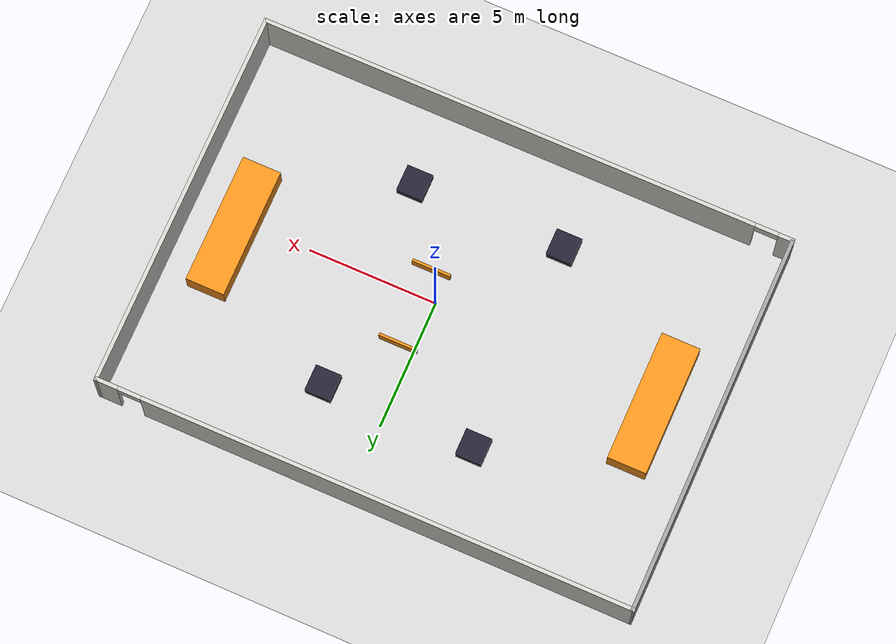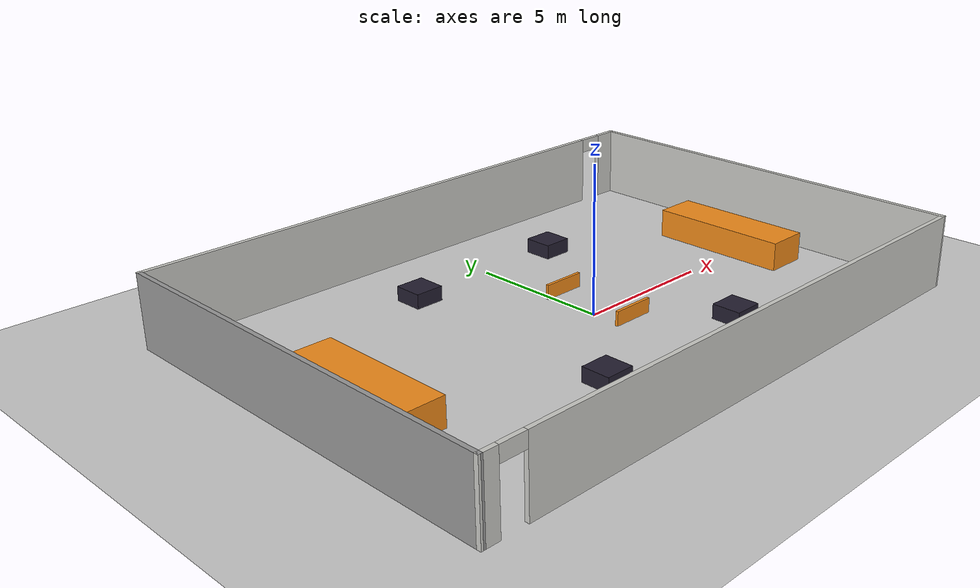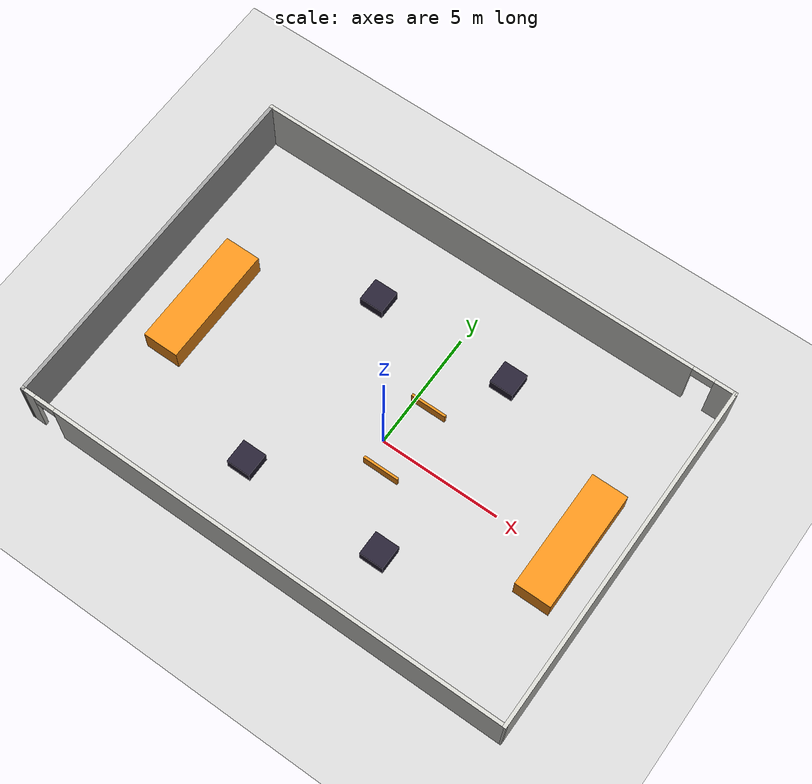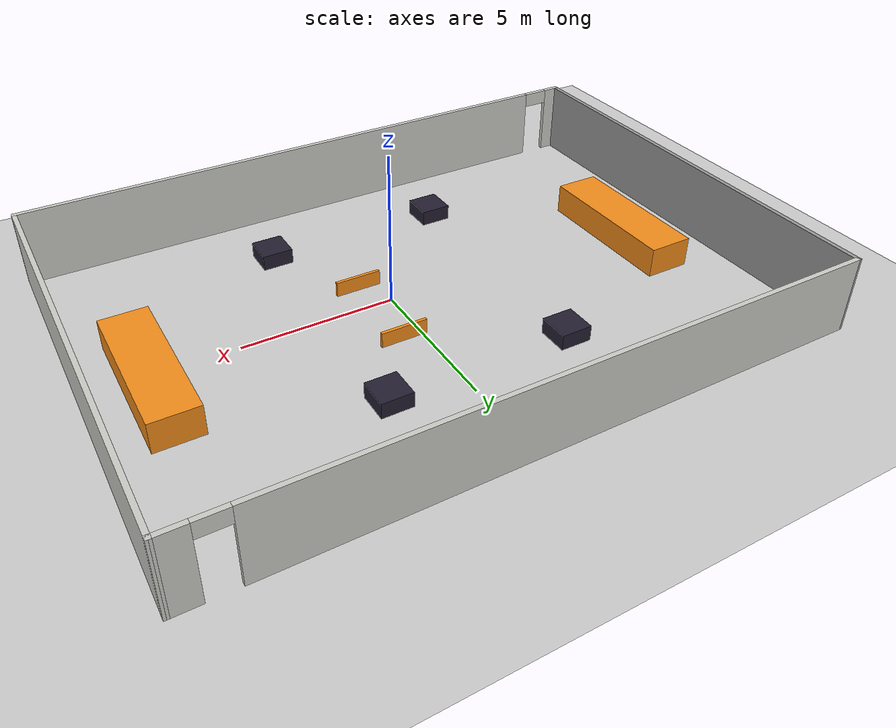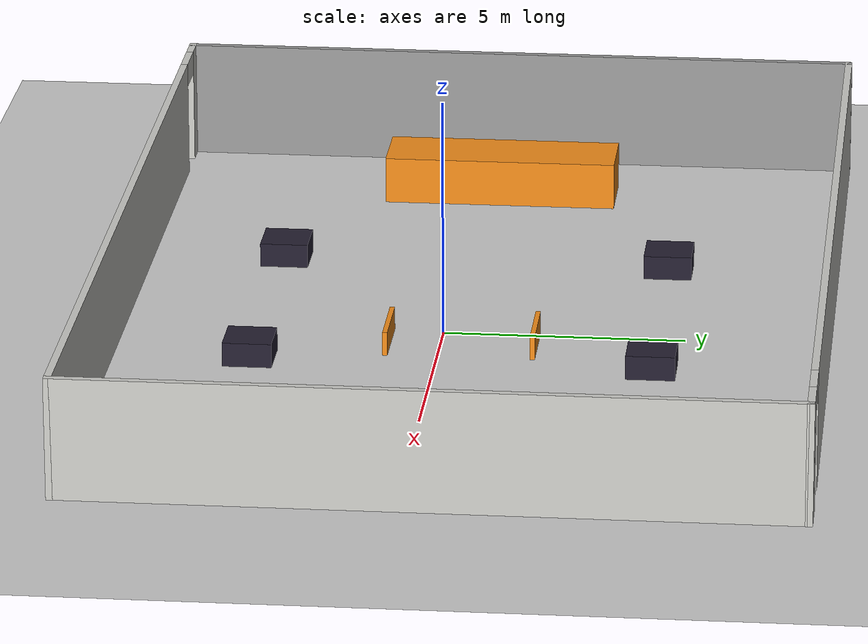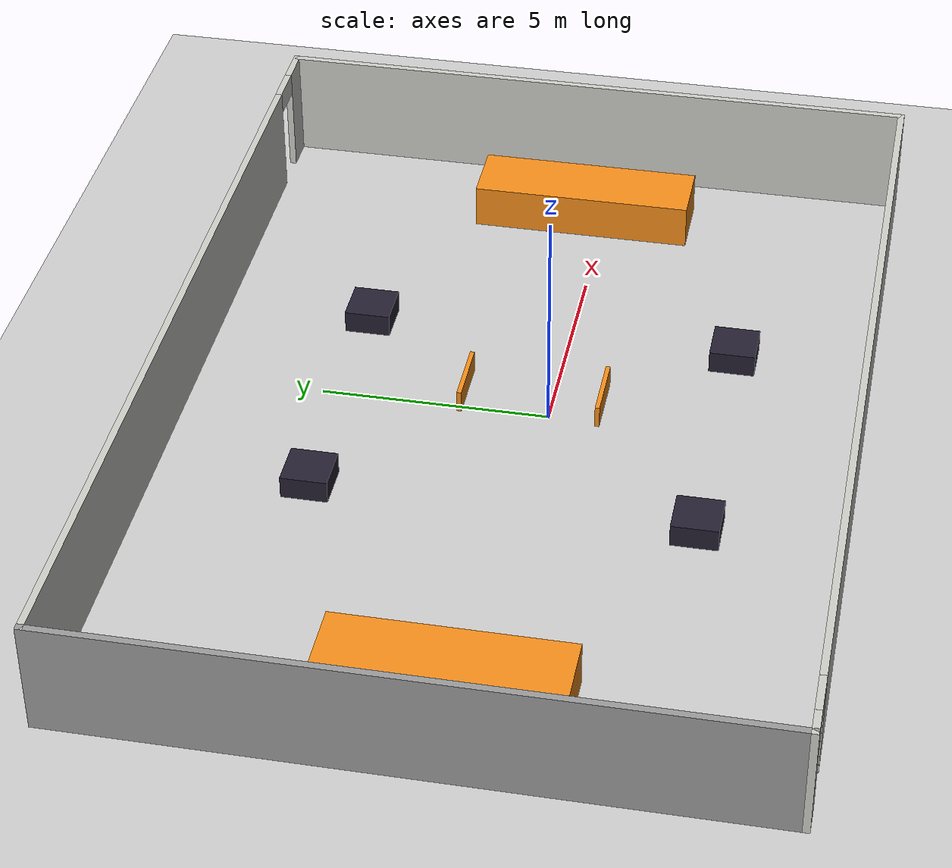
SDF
<sdf version="1.7">
 <world name="default">
  <light name="sun" type="directional">
   <pose>0 0 10 0 -0 0</pose>
   <diffuse>0.8 0.8 0.8 1</diffuse>
   <specular>0.2 0.2 0.2 1</specular>
   <attenuation>
    <range>1000</range>
    <constant>0.9</constant>
    <linear>0.01</linear>
    <quadratic>0.001</quadratic>
   </attenuation>
   <direction>-0.5 0.1 -0.9</direction>
   <spot><inner_angle>0</inner_angle><outer_angle>0</outer_angle><falloff>0</falloff></spot>
  </light>
  <model name="ground_plane">
   <static>1</static>
   <link name="link">
    <collision name="collision">
     <geometry><plane><normal>0 0 1</normal><size>100 100</size></plane></geometry>
     <surface>
      <contact><collide_bitmask>65535</collide_bitmask></contact>
      <friction><ode><mu>100</mu><mu2>50</mu2></ode></friction>
     </surface>
    </collision>
    <visual name="visual">
     <cast_shadows>0</cast_shadows>
     <geometry><plane><normal>0 0 1</normal><size>100 100</size></plane></geometry>
     <material>
      <script><uri>file://media/materials/scripts/gazebo.material</uri><name>Gazebo/Grey</name></script>
     </material>
    </visual>
   </link>
  </model>
  <gravity>0 0 -9.8</gravity>
  <magnetic_field>6e-06 2.3e-05 -4.2e-05</magnetic_field>
  <atmosphere type="adiabatic"/>
  <physics type="ode">
   <max_step_size>0.001</max_step_size>
   <real_time_factor>1</real_time_factor>
   <real_time_update_rate>1000</real_time_update_rate>
  </physics>
  <scene><ambient>0.4 0.4 0.4 1</ambient><background>0.7 0.7 0.7 1</background><shadows>1</shadows></scene>
  <audio><device>default</device></audio>
  <spherical_coordinates>
   <surface_model>EARTH_WGS84</surface_model>
   <latitude_deg>0</latitude_deg>
   <longitude_deg>0</longitude_deg>
   <elevation>0</elevation>
   <heading_deg>0</heading_deg>
  </spherical_coordinates>
  <model name="unit_box">
   <link name="link">
    <inertial>
     <mass>1</mass>
     <inertia>
      <ixx>0.166667</ixx>
      <ixy>0</ixy>
      <ixz>0</ixz>
      <iyy>0.166667</iyy>
      <iyz>0</iyz>
      <izz>0.166667</izz>
     </inertia>
    </inertial>
    <visual name="visual">
     <geometry><box><size>1.5 5 1</size></box></geometry>
     <material>
      <script><name>Gazebo/Orange</name><uri>file://media/materials/scripts/gazebo.material</uri></script>
      <shader type="pixel"><normal_map>__default__</normal_map></shader>
      <ambient>1 0.471 0 1</ambient>
      <diffuse>0.7 0.7 0.7 1</diffuse>
      <specular>0.01 0.01 0.01 1</specular>
      <emissive>0 0 0 1</emissive>
     </material>
    </visual>
    <collision name="collision">
     <geometry><box><size>1 1 1</size></box></geometry>
     <surface>
      <friction>
       <ode><mu>1</mu><mu2>1</mu2><fdir1>0 0 0</fdir1><slip1>0</slip1><slip2>0</slip2></ode>
       <torsional>
        <coefficient>1</coefficient>
        <patch_radius>0</patch_radius>
        <surface_radius>0</surface_radius>
        <use_patch_radius>1</use_patch_radius>
        <ode><slip>0</slip></ode>
       </torsional>
      </friction>
      <bounce><restitution_coefficient>0</restitution_coefficient><threshold>1e+06</threshold></bounce>
      <contact>
       <collide_without_contact>0</collide_without_contact>
       <collide_without_contact_bitmask>1</collide_without_contact_bitmask>
       <collide_bitmask>1</collide_bitmask>
       <ode>
        <soft_cfm>0</soft_cfm>
        <soft_erp>0.2</soft_erp>
        <kp>1e+13</kp>
        <kd>1</kd>
        <max_vel>0.01</max_vel>
        <min_depth>0</min_depth>
       </ode>
       <bullet>
        <split_impulse>1</split_impulse>
        <split_impulse_penetration_threshold>-0.01</split_impulse_penetration_threshold>
        <soft_cfm>0</soft_cfm>
        <soft_erp>0.2</soft_erp>
        <kp>1e+13</kp>
        <kd>1</kd>
       </bullet>
      </contact>
     </surface>
    </collision>
   </link>
   <static>0</static>
   <pose>-8.72262 0.456638 0.499995 0 1e-05 0</pose>
  </model>
  <model name="unit_box_clone">
   <link name="link">
    <inertial>
     <mass>1</mass>
     <inertia>
      <ixx>0.166667</ixx>
      <ixy>0</ixy>
      <ixz>0</ixz>
      <iyy>0.166667</iyy>
      <iyz>0</iyz>
      <izz>0.166667</izz>
     </inertia>
    </inertial>
    <visual name="visual">
     <geometry><box><size>1.5 5 1</size></box></geometry>
     <material>
      <script><name>Gazebo/Orange</name><uri>file://media/materials/scripts/gazebo.material</uri></script>
      <shader type="pixel"><normal_map>__default__</normal_map></shader>
      <ambient>1 0.471 0 1</ambient>
      <diffuse>0.7 0.7 0.7 1</diffuse>
      <specular>0.01 0.01 0.01 1</specular>
      <emissive>0 0 0 1</emissive>
     </material>
    </visual>
    <collision name="collision">
     <geometry><box><size>1 1 1</size></box></geometry>
     <surface>
      <friction>
       <ode><mu>1</mu><mu2>1</mu2><fdir1>0 0 0</fdir1><slip1>0</slip1><slip2>0</slip2></ode>
       <torsional>
        <coefficient>1</coefficient>
        <patch_radius>0</patch_radius>
        <surface_radius>0</surface_radius>
        <use_patch_radius>1</use_patch_radius>
        <ode><slip>0</slip></ode>
       </torsional>
      </friction>
      <bounce><restitution_coefficient>0</restitution_coefficient><threshold>1e+06</threshold></bounce>
      <contact>
       <collide_without_contact>0</collide_without_contact>
       <collide_without_contact_bitmask>1</collide_without_contact_bitmask>
       <collide_bitmask>1</collide_bitmask>
       <ode>
        <soft_cfm>0</soft_cfm>
        <soft_erp>0.2</soft_erp>
        <kp>1e+13</kp>
        <kd>1</kd>
        <max_vel>0.01</max_vel>
        <min_depth>0</min_depth>
       </ode>
       <bullet>
        <split_impulse>1</split_impulse>
        <split_impulse_penetration_threshold>-0.01</split_impulse_penetration_threshold>
        <soft_cfm>0</soft_cfm>
        <soft_erp>0.2</soft_erp>
        <kp>1e+13</kp>
        <kd>1</kd>
       </bullet>
      </contact>
     </surface>
    </collision>
   </link>
   <static>0</static>
   <pose>7.77297 0.493928 0.499995 -1e-05 0 0</pose>
  </model>
  <model name="machine_small">
   <link name="link">
    <inertial>
     <mass>1</mass>
     <inertia>
      <ixx>0.166667</ixx>
      <ixy>0</ixy>
      <ixz>0</ixz>
      <iyy>0.166667</iyy>
      <iyz>0</iyz>
      <izz>0.166667</izz>
     </inertia>
    </inertial>
    <visual name="visual">
     <geometry><box><size>1 1 0.5</size></box></geometry>
     <material>
      <script><name>Gazebo/Grey</name><uri>file://media/materials/scripts/gazebo.material</uri></script>
      <shader type="pixel"><normal_map>__default__</normal_map></shader>
      <ambient>0.141 0.122 0.192 1</ambient>
      <diffuse>0.7 0.7 0.7 1</diffuse>
      <specular>0.01 0.01 0.01 1</specular>
      <emissive>0 0 0 1</emissive>
     </material>
    </visual>
    <collision name="collision">
     <geometry><box><size>1 1 1</size></box></geometry>
     <surface>
      <friction>
       <ode><mu>1</mu><mu2>1</mu2><fdir1>0 0 0</fdir1><slip1>0</slip1><slip2>0</slip2></ode>
       <torsional>
        <coefficient>1</coefficient>
        <patch_radius>0</patch_radius>
        <surface_radius>0</surface_radius>
        <use_patch_radius>1</use_patch_radius>
        <ode><slip>0</slip></ode>
       </torsional>
      </friction>
      <bounce><restitution_coefficient>0</restitution_coefficient><threshold>1e+06</threshold></bounce>
      <contact>
       <collide_without_contact>0</collide_without_contact>
       <collide_without_contact_bitmask>1</collide_without_contact_bitmask>
       <collide_bitmask>1</collide_bitmask>
       <ode>
        <soft_cfm>0</soft_cfm>
        <soft_erp>0.2</soft_erp>
        <kp>1e+13</kp>
        <kd>1</kd>
        <max_vel>0.01</max_vel>
        <min_depth>0</min_depth>
       </ode>
       <bullet>
        <split_impulse>1</split_impulse>
        <split_impulse_penetration_threshold>-0.01</split_impulse_penetration_threshold>
        <soft_cfm>0</soft_cfm>
        <soft_erp>0.2</soft_erp>
        <kp>1e+13</kp>
        <kd>1</kd>
       </bullet>
      </contact>
     </surface>
    </collision>
   </link>
   <static>0</static>
   <pose>-3.46699 -3.67132 0.499995 1e-05 -0 0</pose>
  </model>
  <model name="machine_small_clone">
   <link name="link">
    <inertial>
     <mass>1</mass>
     <inertia>
      <ixx>0.166667</ixx>
      <ixy>0</ixy>
      <ixz>0</ixz>
      <iyy>0.166667</iyy>
      <iyz>0</iyz>
      <izz>0.166667</izz>
     </inertia>
    </inertial>
    <visual name="visual">
     <geometry><box><size>1 1 0.5</size></box></geometry>
     <material>
      <script><name>Gazebo/Grey</name><uri>file://media/materials/scripts/gazebo.material</uri></script>
      <shader type="pixel"><normal_map>__default__</normal_map></shader>
      <ambient>0.141 0.122 0.192 1</ambient>
      <diffuse>0.7 0.7 0.7 1</diffuse>
      <specular>0.01 0.01 0.01 1</specular>
      <emissive>0 0 0 1</emissive>
     </material>
    </visual>
    <collision name="collision">
     <geometry><box><size>1 1 1</size></box></geometry>
     <surface>
      <friction>
       <ode><mu>1</mu><mu2>1</mu2><fdir1>0 0 0</fdir1><slip1>0</slip1><slip2>0</slip2></ode>
       <torsional>
        <coefficient>1</coefficient>
        <patch_radius>0</patch_radius>
        <surface_radius>0</surface_radius>
        <use_patch_radius>1</use_patch_radius>
        <ode><slip>0</slip></ode>
       </torsional>
      </friction>
      <bounce><restitution_coefficient>0</restitution_coefficient><threshold>1e+06</threshold></bounce>
      <contact>
       <collide_without_contact>0</collide_without_contact>
       <collide_without_contact_bitmask>1</collide_without_contact_bitmask>
       <collide_bitmask>1</collide_bitmask>
       <ode>
        <soft_cfm>0</soft_cfm>
        <soft_erp>0.2</soft_erp>
        <kp>1e+13</kp>
        <kd>1</kd>
        <max_vel>0.01</max_vel>
        <min_depth>0</min_depth>
       </ode>
       <bullet>
        <split_impulse>1</split_impulse>
        <split_impulse_penetration_threshold>-0.01</split_impulse_penetration_threshold>
        <soft_cfm>0</soft_cfm>
        <soft_erp>0.2</soft_erp>
        <kp>1e+13</kp>
        <kd>1</kd>
       </bullet>
      </contact>
     </surface>
    </collision>
   </link>
   <static>0</static>
   <pose>2.4558 -3.70568 0.499995 1e-05 -0 0</pose>
  </model>
  <model name="machine_small_clone_0">
   <link name="link">
    <inertial>
     <mass>1</mass>
     <inertia>
      <ixx>0.166667</ixx>
      <ixy>0</ixy>
      <ixz>0</ixz>
      <iyy>0.166667</iyy>
      <iyz>0</iyz>
      <izz>0.166667</izz>
     </inertia>
    </inertial>
    <visual name="visual">
     <geometry><box><size>1 1 0.5</size></box></geometry>
     <material>
      <script><name>Gazebo/Grey</name><uri>file://media/materials/scripts/gazebo.material</uri></script>
      <shader type="pixel"><normal_map>__default__</normal_map></shader>
      <ambient>0.141 0.122 0.192 1</ambient>
      <diffuse>0.7 0.7 0.7 1</diffuse>
      <specular>0.01 0.01 0.01 1</specular>
      <emissive>0 0 0 1</emissive>
     </material>
    </visual>
    <collision name="collision">
     <geometry><box><size>1 1 1</size></box></geometry>
     <surface>
      <friction>
       <ode><mu>1</mu><mu2>1</mu2><fdir1>0 0 0</fdir1><slip1>0</slip1><slip2>0</slip2></ode>
       <torsional>
        <coefficient>1</coefficient>
        <patch_radius>0</patch_radius>
        <surface_radius>0</surface_radius>
        <use_patch_radius>1</use_patch_radius>
        <ode><slip>0</slip></ode>
       </torsional>
      </friction>
      <bounce><restitution_coefficient>0</restitution_coefficient><threshold>1e+06</threshold></bounce>
      <contact>
       <collide_without_contact>0</collide_without_contact>
       <collide_without_contact_bitmask>1</collide_without_contact_bitmask>
       <collide_bitmask>1</collide_bitmask>
       <ode>
        <soft_cfm>0</soft_cfm>
        <soft_erp>0.2</soft_erp>
        <kp>1e+13</kp>
        <kd>1</kd>
        <max_vel>0.01</max_vel>
        <min_depth>0</min_depth>
       </ode>
       <bullet>
        <split_impulse>1</split_impulse>
        <split_impulse_penetration_threshold>-0.01</split_impulse_penetration_threshold>
        <soft_cfm>0</soft_cfm>
        <soft_erp>0.2</soft_erp>
        <kp>1e+13</kp>
        <kd>1</kd>
       </bullet>
      </contact>
     </surface>
    </collision>
   </link>
   <static>0</static>
   <pose>-3.43493 4.4438 0.499995 1e-05 -0 0</pose>
  </model>
  <model name="machine_small_clone_1">
   <link name="link">
    <inertial>
     <mass>1</mass>
     <inertia>
      <ixx>0.166667</ixx>
      <ixy>0</ixy>
      <ixz>0</ixz>
      <iyy>0.166667</iyy>
      <iyz>0</iyz>
      <izz>0.166667</izz>
     </inertia>
    </inertial>
    <visual name="visual">
     <geometry><box><size>1 1 0.5</size></box></geometry>
     <material>
      <script><name>Gazebo/Grey</name><uri>file://media/materials/scripts/gazebo.material</uri></script>
      <shader type="pixel"><normal_map>__default__</normal_map></shader>
      <ambient>0.141 0.122 0.192 1</ambient>
      <diffuse>0.7 0.7 0.7 1</diffuse>
      <specular>0.01 0.01 0.01 1</specular>
      <emissive>0 0 0 1</emissive>
     </material>
    </visual>
    <collision name="collision">
     <geometry><box><size>1 1 1</size></box></geometry>
     <surface>
      <friction>
       <ode><mu>1</mu><mu2>1</mu2><fdir1>0 0 0</fdir1><slip1>0</slip1><slip2>0</slip2></ode>
       <torsional>
        <coefficient>1</coefficient>
        <patch_radius>0</patch_radius>
        <surface_radius>0</surface_radius>
        <use_patch_radius>1</use_patch_radius>
        <ode><slip>0</slip></ode>
       </torsional>
      </friction>
      <bounce><restitution_coefficient>0</restitution_coefficient><threshold>1e+06</threshold></bounce>
      <contact>
       <collide_without_contact>0</collide_without_contact>
       <collide_without_contact_bitmask>1</collide_without_contact_bitmask>
       <collide_bitmask>1</collide_bitmask>
       <ode>
        <soft_cfm>0</soft_cfm>
        <soft_erp>0.2</soft_erp>
        <kp>1e+13</kp>
        <kd>1</kd>
        <max_vel>0.01</max_vel>
        <min_depth>0</min_depth>
       </ode>
       <bullet>
        <split_impulse>1</split_impulse>
        <split_impulse_penetration_threshold>-0.01</split_impulse_penetration_threshold>
        <soft_cfm>0</soft_cfm>
        <soft_erp>0.2</soft_erp>
        <kp>1e+13</kp>
        <kd>1</kd>
       </bullet>
      </contact>
     </surface>
    </collision>
   </link>
   <static>0</static>
   <pose>2.44598 4.46161 0.499995 1e-05 -0 0</pose>
  </model>
  <model name="wallswarehouse">
   <pose>-0.67751 0.630243 0 0 -0 0</pose>
   <link name="Wall_16">
    <collision name="Wall_16_Collision">
     <geometry><box><size>14.75 0.15 2.5</size></box></geometry>
     <pose>0 0 1.25 0 -0 0</pose>
    </collision>
    <visual name="Wall_16_Visual">
     <pose>0 0 1.25 0 -0 0</pose>
     <geometry><box><size>14.75 0.15 2.5</size></box></geometry>
     <material>
      <script><uri>file://media/materials/scripts/gazebo.material</uri><name>Gazebo/CeilingTiled</name></script>
      <ambient>1 1 1 1</ambient>
     </material>
     <meta><layer>0</layer></meta>
    </visual>
    <pose>10.3283 0.004254 0 0 -0 -1.5708</pose>
   </link>
   <link name="Wall_18">
    <pose>0 7.3 0 0 -0 0.000412</pose>
    <visual name="Wall_18_Visual_0">
     <pose>-0.911342 0 1.25 0 -0 0</pose>
     <geometry><box><size>18.9839 0.15 2.5</size></box></geometry>
     <material>
      <script><uri>file://media/materials/scripts/gazebo.material</uri><name>Gazebo/CeilingTiled</name></script>
      <ambient>1 1 1 1</ambient>
     </material>
     <meta><layer>0</layer></meta>
    </visual>
    <collision name="Wall_18_Collision_0">
     <geometry><box><size>18.9839 0.15 2.5</size></box></geometry>
     <pose>-0.911342 0 1.25 0 -0 0</pose>
    </collision>
    <visual name="Wall_18_Visual_1">
     <pose>9.94197 0 1.25 0 -0 0</pose>
     <geometry><box><size>0.922684 0.15 2.5</size></box></geometry>
     <material>
      <script><uri>file://media/materials/scripts/gazebo.material</uri><name>Gazebo/CeilingTiled</name></script>
      <ambient>1 1 1 1</ambient>
     </material>
     <meta><layer>0</layer></meta>
    </visual>
    <collision name="Wall_18_Collision_1">
     <geometry><box><size>0.922684 0.15 2.5</size></box></geometry>
     <pose>9.94197 0 1.25 0 -0 0</pose>
    </collision>
    <visual name="Wall_18_Visual_2">
     <pose>9.03063 0 2.25 0 -0 0</pose>
     <geometry><box><size>0.9 0.15 0.5</size></box></geometry>
     <material>
      <script><uri>file://media/materials/scripts/gazebo.material</uri><name>Gazebo/CeilingTiled</name></script>
      <ambient>1 1 1 1</ambient>
     </material>
     <meta><layer>0</layer></meta>
    </visual>
    <collision name="Wall_18_Collision_2">
     <geometry><box><size>0.9 0.15 0.5</size></box></geometry>
     <pose>9.03063 0 2.25 0 -0 0</pose>
    </collision>
   </link>
   <link name="Wall_20">
    <pose>0 -7.3 0 0 -0 0.000412</pose>
    <visual name="Wall_20_Visual_0">
     <pose>-10.0948 0 1.25 0 -0 0</pose>
     <geometry><box><size>0.617087 0.15 2.5</size></box></geometry>
     <material>
      <script><uri>file://media/materials/scripts/gazebo.material</uri><name>Gazebo/CeilingTiled</name></script>
      <ambient>1 1 1 1</ambient>
     </material>
     <meta><layer>0</layer></meta>
    </visual>
    <collision name="Wall_20_Collision_0">
     <geometry><box><size>0.617087 0.15 2.5</size></box></geometry>
     <pose>-10.0948 0 1.25 0 -0 0</pose>
    </collision>
    <visual name="Wall_20_Visual_1">
     <pose>0.758543 0 1.25 0 -0 0</pose>
     <geometry><box><size>19.2895 0.15 2.5</size></box></geometry>
     <material>
      <script><uri>file://media/materials/scripts/gazebo.material</uri><name>Gazebo/CeilingTiled</name></script>
      <ambient>1 1 1 1</ambient>
     </material>
     <meta><layer>0</layer></meta>
    </visual>
    <collision name="Wall_20_Collision_1">
     <geometry><box><size>19.2895 0.15 2.5</size></box></geometry>
     <pose>0.758543 0 1.25 0 -0 0</pose>
    </collision>
    <visual name="Wall_20_Visual_2">
     <pose>-9.33622 0 2.25 0 -0 0</pose>
     <geometry><box><size>0.9 0.15 0.5</size></box></geometry>
     <material>
      <script><uri>file://media/materials/scripts/gazebo.material</uri><name>Gazebo/CeilingTiled</name></script>
      <ambient>1 1 1 1</ambient>
     </material>
     <meta><layer>0</layer></meta>
    </visual>
    <collision name="Wall_20_Collision_2">
     <geometry><box><size>0.9 0.15 0.5</size></box></geometry>
     <pose>-9.33622 0 2.25 0 -0 0</pose>
    </collision>
   </link>
   <link name="Wall_9">
    <collision name="Wall_9_Collision">
     <geometry><box><size>14.75 0.15 2.5</size></box></geometry>
     <pose>0 0 1.25 0 -0 0</pose>
    </collision>
    <visual name="Wall_9_Visual">
     <pose>0 0 1.25 0 -0 0</pose>
     <geometry><box><size>14.75 0.15 2.5</size></box></geometry>
     <material>
      <script><uri>file://media/materials/scripts/gazebo.material</uri><name>Gazebo/Grey</name></script>
      <ambient>1 1 1 1</ambient>
     </material>
     <meta><layer>0</layer></meta>
    </visual>
    <pose>-10.3283 -0.004255 0 0 -0 1.5708</pose>
   </link>
   <static>1</static>
  </model>
  <model name="divider">
   <link name="link">
    <inertial>
     <mass>1</mass>
     <inertia>
      <ixx>0.166667</ixx>
      <ixy>0</ixy>
      <ixz>0</ixz>
      <iyy>0.166667</iyy>
      <iyz>0</iyz>
      <izz>0.166667</izz>
     </inertia>
    </inertial>
    <visual name="visual">
     <geometry><box><size>1.5 0.1 0.5</size></box></geometry>
     <material>
      <script><name>Gazebo/Orange</name><uri>file://media/materials/scripts/gazebo.material</uri></script>
      <shader type="pixel"><normal_map>__default__</normal_map></shader>
      <ambient>0.71 0.514 0.353 1</ambient>
      <diffuse>0.7 0.7 0.7 1</diffuse>
      <specular>0.01 0.01 0.01 1</specular>
      <emissive>0 0 0 1</emissive>
     </material>
    </visual>
    <collision name="collision">
     <geometry><box><size>1.5 0.1 0.5</size></box></geometry>
     <surface>
      <friction>
       <ode><mu>1</mu><mu2>1</mu2><fdir1>0 0 0</fdir1><slip1>0</slip1><slip2>0</slip2></ode>
       <torsional>
        <coefficient>1</coefficient>
        <patch_radius>0</patch_radius>
        <surface_radius>0</surface_radius>
        <use_patch_radius>1</use_patch_radius>
        <ode><slip>0</slip></ode>
       </torsional>
      </friction>
      <bounce><restitution_coefficient>0</restitution_coefficient><threshold>1e+06</threshold></bounce>
      <contact>
       <collide_without_contact>0</collide_without_contact>
       <collide_without_contact_bitmask>1</collide_without_contact_bitmask>
       <collide_bitmask>1</collide_bitmask>
       <ode>
        <soft_cfm>0</soft_cfm>
        <soft_erp>0.2</soft_erp>
        <kp>1e+13</kp>
        <kd>1</kd>
        <max_vel>0.01</max_vel>
        <min_depth>0</min_depth>
       </ode>
       <bullet>
        <split_impulse>1</split_impulse>
        <split_impulse_penetration_threshold>-0.01</split_impulse_penetration_threshold>
        <soft_cfm>0</soft_cfm>
        <soft_erp>0.2</soft_erp>
        <kp>1e+13</kp>
        <kd>1</kd>
       </bullet>
      </contact>
     </surface>
    </collision>
   </link>
   <static>0</static>
   <pose>0.624262 1.95423 0.249992 0 -1.1e-05 0.000439</pose>
  </model>
  <model name="divider_clone">
   <link name="link">
    <inertial>
     <mass>1</mass>
     <inertia>
      <ixx>0.166667</ixx>
      <ixy>0</ixy>
      <ixz>0</ixz>
      <iyy>0.166667</iyy>
      <iyz>0</iyz>
      <izz>0.166667</izz>
     </inertia>
    </inertial>
    <visual name="visual">
     <geometry><box><size>1.5 0.1 0.5</size></box></geometry>
     <material>
      <script><name>Gazebo/Orange</name><uri>file://media/materials/scripts/gazebo.material</uri></script>
      <shader type="pixel"><normal_map>__default__</normal_map></shader>
      <ambient>0.71 0.514 0.353 1</ambient>
      <diffuse>0.7 0.7 0.7 1</diffuse>
      <specular>0.01 0.01 0.01 1</specular>
      <emissive>0 0 0 1</emissive>
     </material>
    </visual>
    <collision name="collision">
     <geometry><box><size>1.5 0.1 0.5</size></box></geometry>
     <surface>
      <friction>
       <ode><mu>1</mu><mu2>1</mu2><fdir1>0 0 0</fdir1><slip1>0</slip1><slip2>0</slip2></ode>
       <torsional>
        <coefficient>1</coefficient>
        <patch_radius>0</patch_radius>
        <surface_radius>0</surface_radius>
        <use_patch_radius>1</use_patch_radius>
        <ode><slip>0</slip></ode>
       </torsional>
      </friction>
      <bounce><restitution_coefficient>0</restitution_coefficient><threshold>1e+06</threshold></bounce>
      <contact>
       <collide_without_contact>0</collide_without_contact>
       <collide_without_contact_bitmask>1</collide_without_contact_bitmask>
       <collide_bitmask>1</collide_bitmask>
       <ode>
        <soft_cfm>0</soft_cfm>
        <soft_erp>0.2</soft_erp>
        <kp>1e+13</kp>
        <kd>1</kd>
        <max_vel>0.01</max_vel>
        <min_depth>0</min_depth>
       </ode>
       <bullet>
        <split_impulse>1</split_impulse>
        <split_impulse_penetration_threshold>-0.01</split_impulse_penetration_threshold>
        <soft_cfm>0</soft_cfm>
        <soft_erp>0.2</soft_erp>
        <kp>1e+13</kp>
        <kd>1</kd>
       </bullet>
      </contact>
     </surface>
    </collision>
   </link>
   <static>0</static>
   <pose>0.636667 -1.06563 0.249992 0 1.1e-05 0.00044</pose>
  </model>
 </world>
</sdf>
